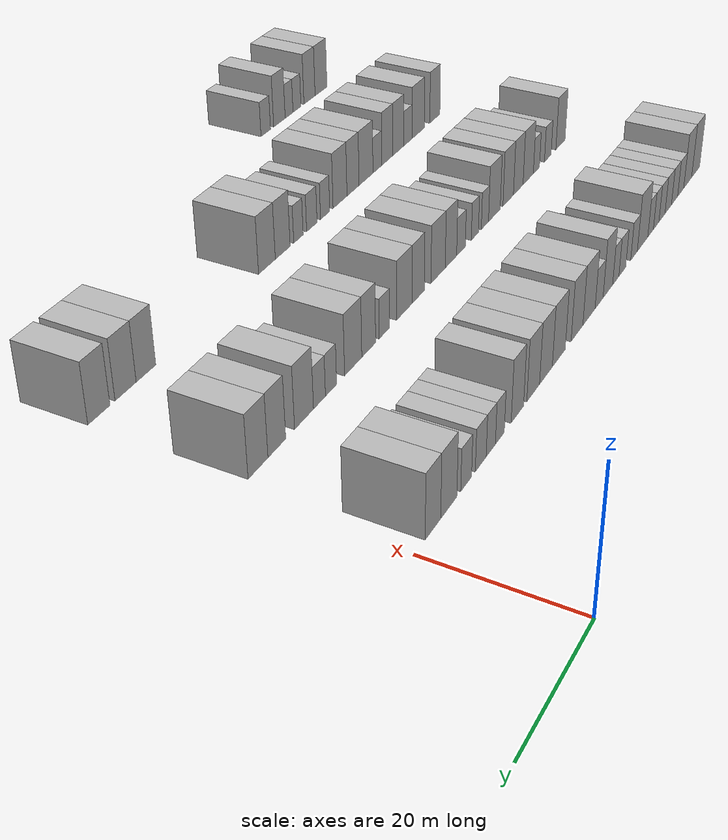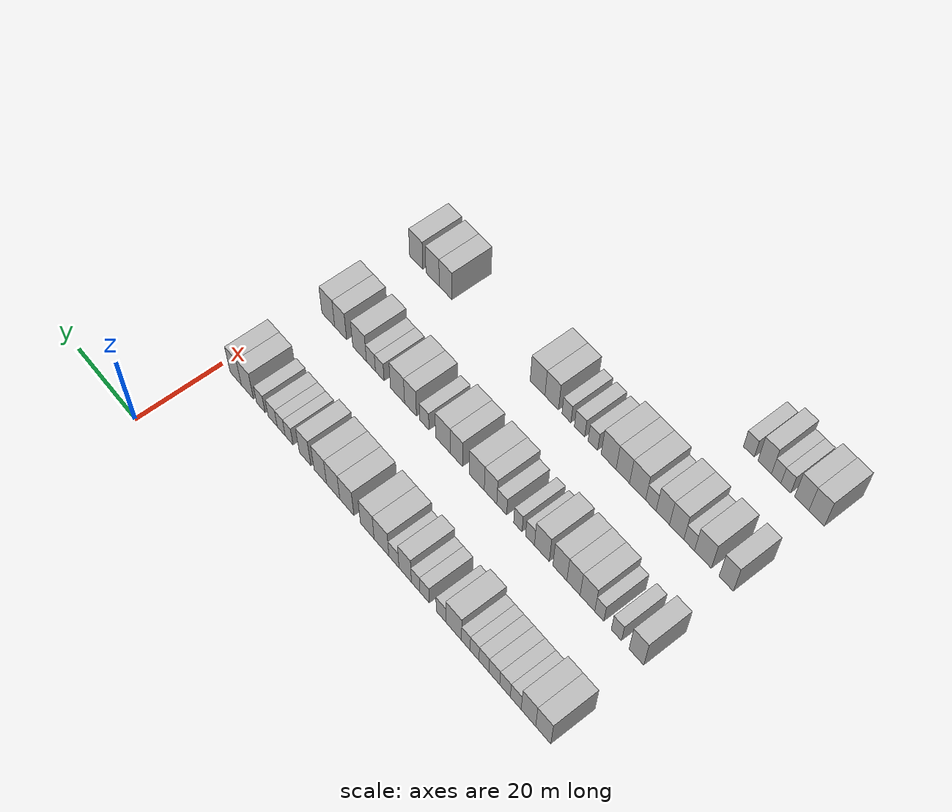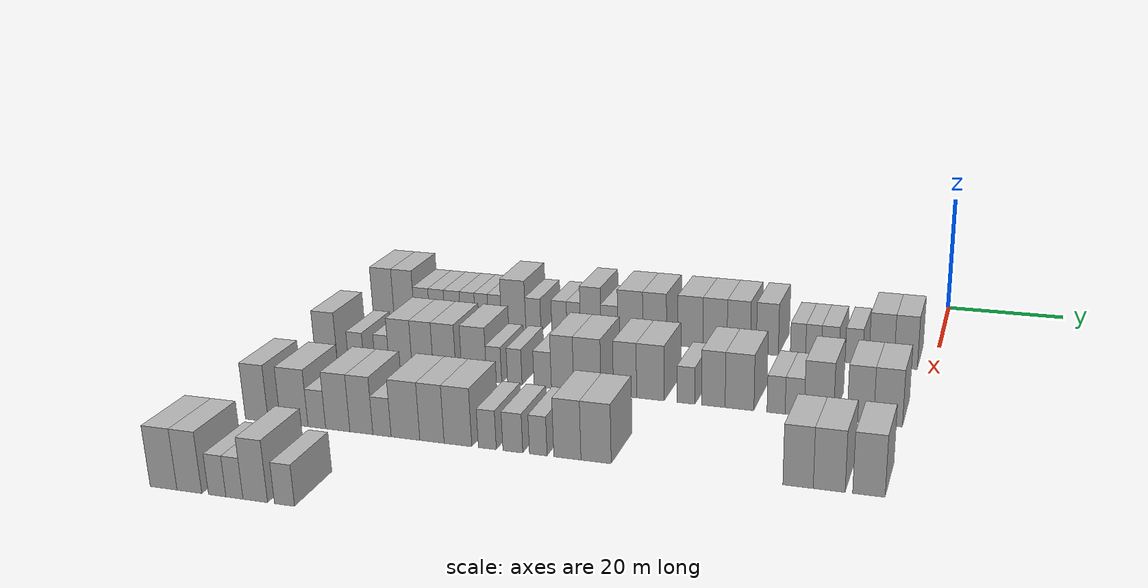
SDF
<sdf version="1.6">
 <world name="default">
  <model name="building_70">
   <static>1</static>
   <pose>25.0000 -96.2771 0 0.000000 0.000000 0.000000</pose>
   <link name="link">
    <pose>0 0 4.50 0 0 0</pose>
    <collision name="collision"><geometry><box><size>10.0000 4.0254 9.0000</size></box></geometry></collision>
    <visual name="visual">
     <cast_shadows>0</cast_shadows>
     <geometry><box><size>10.0000 4.0254 9.0000</size></box></geometry>
     <material>
      <script>
       <uri>model://HANNAS_wall/materials/scripts</uri>
       <uri>model://HANNAS_wall/materials/textures</uri>
       <name>vrc/HANNAS_wall</name>
      </script>
     </material>
    </visual>
   </link>
  </model>
  <model name="building_71">
   <static>1</static>
   <pose>25.0000 -92.3193 0 0.000000 0.000000 0.000000</pose>
   <link name="link">
    <pose>0 0 4.50 0 0 0</pose>
    <collision name="collision"><geometry><box><size>10.0000 3.8903 9.0000</size></box></geometry></collision>
    <visual name="visual">
     <cast_shadows>0</cast_shadows>
     <geometry><box><size>10.0000 3.8903 9.0000</size></box></geometry>
     <material>
      <script>
       <uri>model://HANNAS_wall/materials/scripts</uri>
       <uri>model://HANNAS_wall/materials/textures</uri>
       <name>vrc/HANNAS_wall</name>
      </script>
     </material>
    </visual>
   </link>
  </model>
  <model name="building_72">
   <static>1</static>
   <pose>25.0000 -88.9104 0 0.000000 0.000000 0.000000</pose>
   <link name="link">
    <pose>0 0 3.00 0 0 0</pose>
    <collision name="collision"><geometry><box><size>10.0000 2.9274 6.0000</size></box></geometry></collision>
    <visual name="visual">
     <cast_shadows>0</cast_shadows>
     <geometry><box><size>10.0000 2.9274 6.0000</size></box></geometry>
     <material>
      <script>
       <uri>model://HANNAS_wall/materials/scripts</uri>
       <uri>model://HANNAS_wall/materials/textures</uri>
       <name>vrc/HANNAS_wall</name>
      </script>
     </material>
    </visual>
   </link>
  </model>
  <model name="building_73">
   <static>1</static>
   <pose>25.0000 -86.0013 0 0.000000 0.000000 0.000000</pose>
   <link name="link">
    <pose>0 0 3.00 0 0 0</pose>
    <collision name="collision"><geometry><box><size>10.0000 2.8908 6.0000</size></box></geometry></collision>
    <visual name="visual">
     <cast_shadows>0</cast_shadows>
     <geometry><box><size>10.0000 2.8908 6.0000</size></box></geometry>
     <material>
      <script>
       <uri>model://HANNAS_wall/materials/scripts</uri>
       <uri>model://HANNAS_wall/materials/textures</uri>
       <name>vrc/HANNAS_wall</name>
      </script>
     </material>
    </visual>
   </link>
  </model>
  <model name="building_74">
   <static>1</static>
   <pose>25.0000 -83.0703 0 0.000000 0.000000 0.000000</pose>
   <link name="link">
    <pose>0 0 3.00 0 0 0</pose>
    <collision name="collision"><geometry><box><size>10.0000 2.9712 6.0000</size></box></geometry></collision>
    <visual name="visual">
     <cast_shadows>0</cast_shadows>
     <geometry><box><size>10.0000 2.9712 6.0000</size></box></geometry>
     <material>
      <script>
       <uri>model://HANNAS_wall/materials/scripts</uri>
       <uri>model://HANNAS_wall/materials/textures</uri>
       <name>vrc/HANNAS_wall</name>
      </script>
     </material>
    </visual>
   </link>
  </model>
  <model name="building_75">
   <static>1</static>
   <pose>25.0000 -80.2121 0 0.000000 0.000000 0.000000</pose>
   <link name="link">
    <pose>0 0 3.00 0 0 0</pose>
    <collision name="collision"><geometry><box><size>10.0000 2.7452 6.0000</size></box></geometry></collision>
    <visual name="visual">
     <cast_shadows>0</cast_shadows>
     <geometry><box><size>10.0000 2.7452 6.0000</size></box></geometry>
     <material>
      <script>
       <uri>model://HANNAS_wall/materials/scripts</uri>
       <uri>model://HANNAS_wall/materials/textures</uri>
       <name>vrc/HANNAS_wall</name>
      </script>
     </material>
    </visual>
   </link>
  </model>
  <model name="building_76">
   <static>1</static>
   <pose>25.0000 -77.6186 0 0.000000 0.000000 0.000000</pose>
   <link name="link">
    <pose>0 0 3.00 0 0 0</pose>
    <collision name="collision"><geometry><box><size>10.0000 2.4418 6.0000</size></box></geometry></collision>
    <visual name="visual">
     <cast_shadows>0</cast_shadows>
     <geometry><box><size>10.0000 2.4418 6.0000</size></box></geometry>
     <material>
      <script>
       <uri>model://HANNAS_wall/materials/scripts</uri>
       <uri>model://HANNAS_wall/materials/textures</uri>
       <name>vrc/HANNAS_wall</name>
      </script>
     </material>
    </visual>
   </link>
  </model>
  <model name="building_77">
   <static>1</static>
   <pose>25.0000 -75.1793 0 0.000000 0.000000 0.000000</pose>
   <link name="link">
    <pose>0 0 3.00 0 0 0</pose>
    <collision name="collision"><geometry><box><size>10.0000 2.4368 6.0000</size></box></geometry></collision>
    <visual name="visual">
     <cast_shadows>0</cast_shadows>
     <geometry><box><size>10.0000 2.4368 6.0000</size></box></geometry>
     <material>
      <script>
       <uri>model://HANNAS_wall/materials/scripts</uri>
       <uri>model://HANNAS_wall/materials/textures</uri>
       <name>vrc/HANNAS_wall</name>
      </script>
     </material>
    </visual>
   </link>
  </model>
  <model name="building_78">
   <static>1</static>
   <pose>25.0000 -71.7405 0 0.000000 0.000000 0.000000</pose>
   <link name="link">
    <pose>0 0 4.50 0 0 0</pose>
    <collision name="collision"><geometry><box><size>10.0000 4.4407 9.0000</size></box></geometry></collision>
    <visual name="visual">
     <cast_shadows>0</cast_shadows>
     <geometry><box><size>10.0000 4.4407 9.0000</size></box></geometry>
     <material>
      <script>
       <uri>model://HANNAS_wall/materials/scripts</uri>
       <uri>model://HANNAS_wall/materials/textures</uri>
       <name>vrc/HANNAS_wall</name>
      </script>
     </material>
    </visual>
   </link>
  </model>
  <model name="building_79">
   <static>1</static>
   <pose>25.0000 -68.1407 0 0.000000 0.000000 0.000000</pose>
   <link name="link">
    <pose>0 0 3.00 0 0 0</pose>
    <collision name="collision"><geometry><box><size>10.0000 2.7589 6.0000</size></box></geometry></collision>
    <visual name="visual">
     <cast_shadows>0</cast_shadows>
     <geometry><box><size>10.0000 2.7589 6.0000</size></box></geometry>
     <material>
      <script>
       <uri>model://HANNAS_wall/materials/scripts</uri>
       <uri>model://HANNAS_wall/materials/textures</uri>
       <name>vrc/HANNAS_wall</name>
      </script>
     </material>
    </visual>
   </link>
  </model>
  <model name="building_80">
   <static>1</static>
   <pose>25.0000 -63.3926 0 0.000000 0.000000 0.000000</pose>
   <link name="link">
    <pose>0 0 3.00 0 0 0</pose>
    <collision name="collision"><geometry><box><size>10.0000 2.7373 6.0000</size></box></geometry></collision>
    <visual name="visual">
     <cast_shadows>0</cast_shadows>
     <geometry><box><size>10.0000 2.7373 6.0000</size></box></geometry>
     <material>
      <script>
       <uri>model://HANNAS_wall/materials/scripts</uri>
       <uri>model://HANNAS_wall/materials/textures</uri>
       <name>vrc/HANNAS_wall</name>
      </script>
     </material>
    </visual>
   </link>
  </model>
  <model name="building_81">
   <static>1</static>
   <pose>25.0000 -60.8012 0 0.000000 0.000000 0.000000</pose>
   <link name="link">
    <pose>0 0 3.00 0 0 0</pose>
    <collision name="collision"><geometry><box><size>10.0000 2.4455 6.0000</size></box></geometry></collision>
    <visual name="visual">
     <cast_shadows>0</cast_shadows>
     <geometry><box><size>10.0000 2.4455 6.0000</size></box></geometry>
     <material>
      <script>
       <uri>model://HANNAS_wall/materials/scripts</uri>
       <uri>model://HANNAS_wall/materials/textures</uri>
       <name>vrc/HANNAS_wall</name>
      </script>
     </material>
    </visual>
   </link>
  </model>
  <model name="building_82">
   <static>1</static>
   <pose>25.0000 -57.7466 0 0.000000 0.000000 0.000000</pose>
   <link name="link">
    <pose>0 0 4.50 0 0 0</pose>
    <collision name="collision"><geometry><box><size>10.0000 3.6637 9.0000</size></box></geometry></collision>
    <visual name="visual">
     <cast_shadows>0</cast_shadows>
     <geometry><box><size>10.0000 3.6637 9.0000</size></box></geometry>
     <material>
      <script>
       <uri>model://HANNAS_wall/materials/scripts</uri>
       <uri>model://HANNAS_wall/materials/textures</uri>
       <name>vrc/HANNAS_wall</name>
      </script>
     </material>
    </visual>
   </link>
  </model>
  <model name="building_83">
   <static>1</static>
   <pose>25.0000 -54.4215 0 0.000000 0.000000 0.000000</pose>
   <link name="link">
    <pose>0 0 3.00 0 0 0</pose>
    <collision name="collision"><geometry><box><size>10.0000 2.9864 6.0000</size></box></geometry></collision>
    <visual name="visual">
     <cast_shadows>0</cast_shadows>
     <geometry><box><size>10.0000 2.9864 6.0000</size></box></geometry>
     <material>
      <script>
       <uri>model://HANNAS_wall/materials/scripts</uri>
       <uri>model://HANNAS_wall/materials/textures</uri>
       <name>vrc/HANNAS_wall</name>
      </script>
     </material>
    </visual>
   </link>
  </model>
  <model name="building_84">
   <static>1</static>
   <pose>25.0000 -50.7210 0 0.000000 0.000000 0.000000</pose>
   <link name="link">
    <pose>0 0 4.50 0 0 0</pose>
    <collision name="collision"><geometry><box><size>10.0000 4.4145 9.0000</size></box></geometry></collision>
    <visual name="visual">
     <cast_shadows>0</cast_shadows>
     <geometry><box><size>10.0000 4.4145 9.0000</size></box></geometry>
     <material>
      <script>
       <uri>model://HANNAS_wall/materials/scripts</uri>
       <uri>model://HANNAS_wall/materials/textures</uri>
       <name>vrc/HANNAS_wall</name>
      </script>
     </material>
    </visual>
   </link>
  </model>
  <model name="building_85">
   <static>1</static>
   <pose>25.0000 -46.4467 0 0.000000 0.000000 0.000000</pose>
   <link name="link">
    <pose>0 0 4.50 0 0 0</pose>
    <collision name="collision"><geometry><box><size>10.0000 4.1342 9.0000</size></box></geometry></collision>
    <visual name="visual">
     <cast_shadows>0</cast_shadows>
     <geometry><box><size>10.0000 4.1342 9.0000</size></box></geometry>
     <material>
      <script>
       <uri>model://HANNAS_wall/materials/scripts</uri>
       <uri>model://HANNAS_wall/materials/textures</uri>
       <name>vrc/HANNAS_wall</name>
      </script>
     </material>
    </visual>
   </link>
  </model>
  <model name="building_86">
   <static>1</static>
   <pose>25.0000 -40.2250 0 0.000000 0.000000 0.000000</pose>
   <link name="link">
    <pose>0 0 4.50 0 0 0</pose>
    <collision name="collision"><geometry><box><size>10.0000 4.3090 9.0000</size></box></geometry></collision>
    <visual name="visual">
     <cast_shadows>0</cast_shadows>
     <geometry><box><size>10.0000 4.3090 9.0000</size></box></geometry>
     <material>
      <script>
       <uri>model://HANNAS_wall/materials/scripts</uri>
       <uri>model://HANNAS_wall/materials/textures</uri>
       <name>vrc/HANNAS_wall</name>
      </script>
     </material>
    </visual>
   </link>
  </model>
  <model name="building_87">
   <static>1</static>
   <pose>25.0000 -36.0208 0 0.000000 0.000000 0.000000</pose>
   <link name="link">
    <pose>0 0 4.50 0 0 0</pose>
    <collision name="collision"><geometry><box><size>10.0000 4.0994 9.0000</size></box></geometry></collision>
    <visual name="visual">
     <cast_shadows>0</cast_shadows>
     <geometry><box><size>10.0000 4.0994 9.0000</size></box></geometry>
     <material>
      <script>
       <uri>model://HANNAS_wall/materials/scripts</uri>
       <uri>model://HANNAS_wall/materials/textures</uri>
       <name>vrc/HANNAS_wall</name>
      </script>
     </material>
    </visual>
   </link>
  </model>
  <model name="building_88">
   <static>1</static>
   <pose>25.0000 -31.9930 0 0.000000 0.000000 0.000000</pose>
   <link name="link">
    <pose>0 0 4.50 0 0 0</pose>
    <collision name="collision"><geometry><box><size>10.0000 3.9563 9.0000</size></box></geometry></collision>
    <visual name="visual">
     <cast_shadows>0</cast_shadows>
     <geometry><box><size>10.0000 3.9563 9.0000</size></box></geometry>
     <material>
      <script>
       <uri>model://HANNAS_wall/materials/scripts</uri>
       <uri>model://HANNAS_wall/materials/textures</uri>
       <name>vrc/HANNAS_wall</name>
      </script>
     </material>
    </visual>
   </link>
  </model>
  <model name="building_89">
   <static>1</static>
   <pose>25.0000 -27.1671 0 0.000000 0.000000 0.000000</pose>
   <link name="link">
    <pose>0 0 4.50 0 0 0</pose>
    <collision name="collision"><geometry><box><size>10.0000 3.6957 9.0000</size></box></geometry></collision>
    <visual name="visual">
     <cast_shadows>0</cast_shadows>
     <geometry><box><size>10.0000 3.6957 9.0000</size></box></geometry>
     <material>
      <script>
       <uri>model://HANNAS_wall/materials/scripts</uri>
       <uri>model://HANNAS_wall/materials/textures</uri>
       <name>vrc/HANNAS_wall</name>
      </script>
     </material>
    </visual>
   </link>
  </model>
  <model name="building_90">
   <static>1</static>
   <pose>25.0000 -22.0524 0 0.000000 0.000000 0.000000</pose>
   <link name="link">
    <pose>0 0 3.00 0 0 0</pose>
    <collision name="collision"><geometry><box><size>10.0000 2.5336 6.0000</size></box></geometry></collision>
    <visual name="visual">
     <cast_shadows>0</cast_shadows>
     <geometry><box><size>10.0000 2.5336 6.0000</size></box></geometry>
     <material>
      <script>
       <uri>model://HANNAS_wall/materials/scripts</uri>
       <uri>model://HANNAS_wall/materials/textures</uri>
       <name>vrc/HANNAS_wall</name>
      </script>
     </material>
    </visual>
   </link>
  </model>
  <model name="building_91">
   <static>1</static>
   <pose>25.0000 -19.4993 0 0.000000 0.000000 0.000000</pose>
   <link name="link">
    <pose>0 0 3.00 0 0 0</pose>
    <collision name="collision"><geometry><box><size>10.0000 2.5726 6.0000</size></box></geometry></collision>
    <visual name="visual">
     <cast_shadows>0</cast_shadows>
     <geometry><box><size>10.0000 2.5726 6.0000</size></box></geometry>
     <material>
      <script>
       <uri>model://HANNAS_wall/materials/scripts</uri>
       <uri>model://HANNAS_wall/materials/textures</uri>
       <name>vrc/HANNAS_wall</name>
      </script>
     </material>
    </visual>
   </link>
  </model>
  <model name="building_92">
   <static>1</static>
   <pose>25.0000 -16.7391 0 0.000000 0.000000 0.000000</pose>
   <link name="link">
    <pose>0 0 3.00 0 0 0</pose>
    <collision name="collision"><geometry><box><size>10.0000 2.9478 6.0000</size></box></geometry></collision>
    <visual name="visual">
     <cast_shadows>0</cast_shadows>
     <geometry><box><size>10.0000 2.9478 6.0000</size></box></geometry>
     <material>
      <script>
       <uri>model://HANNAS_wall/materials/scripts</uri>
       <uri>model://HANNAS_wall/materials/textures</uri>
       <name>vrc/HANNAS_wall</name>
      </script>
     </material>
    </visual>
   </link>
  </model>
  <model name="building_93">
   <static>1</static>
   <pose>25.0000 -12.8427 0 0.000000 0.000000 0.000000</pose>
   <link name="link">
    <pose>0 0 3.00 0 0 0</pose>
    <collision name="collision"><geometry><box><size>10.0000 2.8451 6.0000</size></box></geometry></collision>
    <visual name="visual">
     <cast_shadows>0</cast_shadows>
     <geometry><box><size>10.0000 2.8451 6.0000</size></box></geometry>
     <material>
      <script>
       <uri>model://HANNAS_wall/materials/scripts</uri>
       <uri>model://HANNAS_wall/materials/textures</uri>
       <name>vrc/HANNAS_wall</name>
      </script>
     </material>
    </visual>
   </link>
  </model>
  <model name="building_94">
   <static>1</static>
   <pose>25.0000 -8.3882 0 0.000000 0.000000 0.000000</pose>
   <link name="link">
    <pose>0 0 4.50 0 0 0</pose>
    <collision name="collision"><geometry><box><size>10.0000 4.0640 9.0000</size></box></geometry></collision>
    <visual name="visual">
     <cast_shadows>0</cast_shadows>
     <geometry><box><size>10.0000 4.0640 9.0000</size></box></geometry>
     <material>
      <script>
       <uri>model://HANNAS_wall/materials/scripts</uri>
       <uri>model://HANNAS_wall/materials/textures</uri>
       <name>vrc/HANNAS_wall</name>
      </script>
     </material>
    </visual>
   </link>
  </model>
  <model name="building_95">
   <static>1</static>
   <pose>25.0000 -4.4784 0 0.000000 0.000000 0.000000</pose>
   <link name="link">
    <pose>0 0 4.50 0 0 0</pose>
    <collision name="collision"><geometry><box><size>10.0000 3.7555 9.0000</size></box></geometry></collision>
    <visual name="visual">
     <cast_shadows>0</cast_shadows>
     <geometry><box><size>10.0000 3.7555 9.0000</size></box></geometry>
     <material>
      <script>
       <uri>model://HANNAS_wall/materials/scripts</uri>
       <uri>model://HANNAS_wall/materials/textures</uri>
       <name>vrc/HANNAS_wall</name>
      </script>
     </material>
    </visual>
   </link>
  </model>
  <model name="building_262">
   <static>1</static>
   <pose>47.0000 -95.5559 0 0.000000 0.000000 0.000000</pose>
   <link name="link">
    <pose>0 0 4.50 0 0 0</pose>
    <collision name="collision"><geometry><box><size>10.0000 3.8938 9.0000</size></box></geometry></collision>
    <visual name="visual">
     <cast_shadows>0</cast_shadows>
     <geometry><box><size>10.0000 3.8938 9.0000</size></box></geometry>
     <material>
      <script>
       <uri>model://HANNAS_wall/materials/scripts</uri>
       <uri>model://HANNAS_wall/materials/textures</uri>
       <name>vrc/HANNAS_wall</name>
      </script>
     </material>
    </visual>
   </link>
  </model>
  <model name="building_263">
   <static>1</static>
   <pose>47.0000 -90.2427 0 0.000000 0.000000 0.000000</pose>
   <link name="link">
    <pose>0 0 3.00 0 0 0</pose>
    <collision name="collision"><geometry><box><size>10.0000 2.7325 6.0000</size></box></geometry></collision>
    <visual name="visual">
     <cast_shadows>0</cast_shadows>
     <geometry><box><size>10.0000 2.7325 6.0000</size></box></geometry>
     <material>
      <script>
       <uri>model://HANNAS_wall/materials/scripts</uri>
       <uri>model://HANNAS_wall/materials/textures</uri>
       <name>vrc/HANNAS_wall</name>
      </script>
     </material>
    </visual>
   </link>
  </model>
  <model name="building_264">
   <static>1</static>
   <pose>47.0000 -85.6535 0 0.000000 0.000000 0.000000</pose>
   <link name="link">
    <pose>0 0 3.00 0 0 0</pose>
    <collision name="collision"><geometry><box><size>10.0000 2.4460 6.0000</size></box></geometry></collision>
    <visual name="visual">
     <cast_shadows>0</cast_shadows>
     <geometry><box><size>10.0000 2.4460 6.0000</size></box></geometry>
     <material>
      <script>
       <uri>model://HANNAS_wall/materials/scripts</uri>
       <uri>model://HANNAS_wall/materials/textures</uri>
       <name>vrc/HANNAS_wall</name>
      </script>
     </material>
    </visual>
   </link>
  </model>
  <model name="building_265">
   <static>1</static>
   <pose>47.0000 -82.4280 0 0.000000 0.000000 0.000000</pose>
   <link name="link">
    <pose>0 0 4.50 0 0 0</pose>
    <collision name="collision"><geometry><box><size>10.0000 4.0050 9.0000</size></box></geometry></collision>
    <visual name="visual">
     <cast_shadows>0</cast_shadows>
     <geometry><box><size>10.0000 4.0050 9.0000</size></box></geometry>
     <material>
      <script>
       <uri>model://HANNAS_wall/materials/scripts</uri>
       <uri>model://HANNAS_wall/materials/textures</uri>
       <name>vrc/HANNAS_wall</name>
      </script>
     </material>
    </visual>
   </link>
  </model>
  <model name="building_266">
   <static>1</static>
   <pose>47.0000 -78.6016 0 0.000000 0.000000 0.000000</pose>
   <link name="link">
    <pose>0 0 4.50 0 0 0</pose>
    <collision name="collision"><geometry><box><size>10.0000 3.6480 9.0000</size></box></geometry></collision>
    <visual name="visual">
     <cast_shadows>0</cast_shadows>
     <geometry><box><size>10.0000 3.6480 9.0000</size></box></geometry>
     <material>
      <script>
       <uri>model://HANNAS_wall/materials/scripts</uri>
       <uri>model://HANNAS_wall/materials/textures</uri>
       <name>vrc/HANNAS_wall</name>
      </script>
     </material>
    </visual>
   </link>
  </model>
  <model name="building_267">
   <static>1</static>
   <pose>47.0000 -74.8322 0 0.000000 0.000000 0.000000</pose>
   <link name="link">
    <pose>0 0 4.50 0 0 0</pose>
    <collision name="collision"><geometry><box><size>10.0000 3.8908 9.0000</size></box></geometry></collision>
    <visual name="visual">
     <cast_shadows>0</cast_shadows>
     <geometry><box><size>10.0000 3.8908 9.0000</size></box></geometry>
     <material>
      <script>
       <uri>model://HANNAS_wall/materials/scripts</uri>
       <uri>model://HANNAS_wall/materials/textures</uri>
       <name>vrc/HANNAS_wall</name>
      </script>
     </material>
    </visual>
   </link>
  </model>
  <model name="building_268">
   <static>1</static>
   <pose>47.0000 -69.8015 0 0.000000 0.000000 0.000000</pose>
   <link name="link">
    <pose>0 0 4.50 0 0 0</pose>
    <collision name="collision"><geometry><box><size>10.0000 4.1706 9.0000</size></box></geometry></collision>
    <visual name="visual">
     <cast_shadows>0</cast_shadows>
     <geometry><box><size>10.0000 4.1706 9.0000</size></box></geometry>
     <material>
      <script>
       <uri>model://HANNAS_wall/materials/scripts</uri>
       <uri>model://HANNAS_wall/materials/textures</uri>
       <name>vrc/HANNAS_wall</name>
      </script>
     </material>
    </visual>
   </link>
  </model>
  <model name="building_269">
   <static>1</static>
   <pose>47.0000 -66.4611 0 0.000000 0.000000 0.000000</pose>
   <link name="link">
    <pose>0 0 3.00 0 0 0</pose>
    <collision name="collision"><geometry><box><size>10.0000 2.5102 6.0000</size></box></geometry></collision>
    <visual name="visual">
     <cast_shadows>0</cast_shadows>
     <geometry><box><size>10.0000 2.5102 6.0000</size></box></geometry>
     <material>
      <script>
       <uri>model://HANNAS_wall/materials/scripts</uri>
       <uri>model://HANNAS_wall/materials/textures</uri>
       <name>vrc/HANNAS_wall</name>
      </script>
     </material>
    </visual>
   </link>
  </model>
  <model name="building_270">
   <static>1</static>
   <pose>47.0000 -63.0001 0 0.000000 0.000000 0.000000</pose>
   <link name="link">
    <pose>0 0 3.00 0 0 0</pose>
    <collision name="collision"><geometry><box><size>10.0000 2.4117 6.0000</size></box></geometry></collision>
    <visual name="visual">
     <cast_shadows>0</cast_shadows>
     <geometry><box><size>10.0000 2.4117 6.0000</size></box></geometry>
     <material>
      <script>
       <uri>model://HANNAS_wall/materials/scripts</uri>
       <uri>model://HANNAS_wall/materials/textures</uri>
       <name>vrc/HANNAS_wall</name>
      </script>
     </material>
    </visual>
   </link>
  </model>
  <model name="building_271">
   <static>1</static>
   <pose>47.0000 -58.3613 0 0.000000 0.000000 0.000000</pose>
   <link name="link">
    <pose>0 0 3.00 0 0 0</pose>
    <collision name="collision"><geometry><box><size>10.0000 2.8659 6.0000</size></box></geometry></collision>
    <visual name="visual">
     <cast_shadows>0</cast_shadows>
     <geometry><box><size>10.0000 2.8659 6.0000</size></box></geometry>
     <material>
      <script>
       <uri>model://HANNAS_wall/materials/scripts</uri>
       <uri>model://HANNAS_wall/materials/textures</uri>
       <name>vrc/HANNAS_wall</name>
      </script>
     </material>
    </visual>
   </link>
  </model>
  <model name="building_272">
   <static>1</static>
   <pose>47.0000 -55.0954 0 0.000000 0.000000 0.000000</pose>
   <link name="link">
    <pose>0 0 4.50 0 0 0</pose>
    <collision name="collision"><geometry><box><size>10.0000 3.6658 9.0000</size></box></geometry></collision>
    <visual name="visual">
     <cast_shadows>0</cast_shadows>
     <geometry><box><size>10.0000 3.6658 9.0000</size></box></geometry>
     <material>
      <script>
       <uri>model://HANNAS_wall/materials/scripts</uri>
       <uri>model://HANNAS_wall/materials/textures</uri>
       <name>vrc/HANNAS_wall</name>
      </script>
     </material>
    </visual>
   </link>
  </model>
  <model name="building_273">
   <static>1</static>
   <pose>47.0000 -51.0389 0 0.000000 0.000000 0.000000</pose>
   <link name="link">
    <pose>0 0 4.50 0 0 0</pose>
    <collision name="collision"><geometry><box><size>10.0000 4.4472 9.0000</size></box></geometry></collision>
    <visual name="visual">
     <cast_shadows>0</cast_shadows>
     <geometry><box><size>10.0000 4.4472 9.0000</size></box></geometry>
     <material>
      <script>
       <uri>model://HANNAS_wall/materials/scripts</uri>
       <uri>model://HANNAS_wall/materials/textures</uri>
       <name>vrc/HANNAS_wall</name>
      </script>
     </material>
    </visual>
   </link>
  </model>
  <model name="building_274">
   <static>1</static>
   <pose>47.0000 -44.9595 0 0.000000 0.000000 0.000000</pose>
   <link name="link">
    <pose>0 0 4.50 0 0 0</pose>
    <collision name="collision"><geometry><box><size>10.0000 3.7117 9.0000</size></box></geometry></collision>
    <visual name="visual">
     <cast_shadows>0</cast_shadows>
     <geometry><box><size>10.0000 3.7117 9.0000</size></box></geometry>
     <material>
      <script>
       <uri>model://HANNAS_wall/materials/scripts</uri>
       <uri>model://HANNAS_wall/materials/textures</uri>
       <name>vrc/HANNAS_wall</name>
      </script>
     </material>
    </visual>
   </link>
  </model>
  <model name="building_275">
   <static>1</static>
   <pose>47.0000 -40.9039 0 0.000000 0.000000 0.000000</pose>
   <link name="link">
    <pose>0 0 4.50 0 0 0</pose>
    <collision name="collision"><geometry><box><size>10.0000 4.3994 9.0000</size></box></geometry></collision>
    <visual name="visual">
     <cast_shadows>0</cast_shadows>
     <geometry><box><size>10.0000 4.3994 9.0000</size></box></geometry>
     <material>
      <script>
       <uri>model://HANNAS_wall/materials/scripts</uri>
       <uri>model://HANNAS_wall/materials/textures</uri>
       <name>vrc/HANNAS_wall</name>
      </script>
     </material>
    </visual>
   </link>
  </model>
  <model name="building_276">
   <static>1</static>
   <pose>47.0000 -35.2857 0 0.000000 0.000000 0.000000</pose>
   <link name="link">
    <pose>0 0 3.00 0 0 0</pose>
    <collision name="collision"><geometry><box><size>10.0000 2.8371 6.0000</size></box></geometry></collision>
    <visual name="visual">
     <cast_shadows>0</cast_shadows>
     <geometry><box><size>10.0000 2.8371 6.0000</size></box></geometry>
     <material>
      <script>
       <uri>model://HANNAS_wall/materials/scripts</uri>
       <uri>model://HANNAS_wall/materials/textures</uri>
       <name>vrc/HANNAS_wall</name>
      </script>
     </material>
    </visual>
   </link>
  </model>
  <model name="building_277">
   <static>1</static>
   <pose>47.0000 -31.0288 0 0.000000 0.000000 0.000000</pose>
   <link name="link">
    <pose>0 0 4.50 0 0 0</pose>
    <collision name="collision"><geometry><box><size>10.0000 3.6767 9.0000</size></box></geometry></collision>
    <visual name="visual">
     <cast_shadows>0</cast_shadows>
     <geometry><box><size>10.0000 3.6767 9.0000</size></box></geometry>
     <material>
      <script>
       <uri>model://HANNAS_wall/materials/scripts</uri>
       <uri>model://HANNAS_wall/materials/textures</uri>
       <name>vrc/HANNAS_wall</name>
      </script>
     </material>
    </visual>
   </link>
  </model>
  <model name="building_278">
   <static>1</static>
   <pose>47.0000 -26.9733 0 0.000000 0.000000 0.000000</pose>
   <link name="link">
    <pose>0 0 4.50 0 0 0</pose>
    <collision name="collision"><geometry><box><size>10.0000 4.4343 9.0000</size></box></geometry></collision>
    <visual name="visual">
     <cast_shadows>0</cast_shadows>
     <geometry><box><size>10.0000 4.4343 9.0000</size></box></geometry>
     <material>
      <script>
       <uri>model://HANNAS_wall/materials/scripts</uri>
       <uri>model://HANNAS_wall/materials/textures</uri>
       <name>vrc/HANNAS_wall</name>
      </script>
     </material>
    </visual>
   </link>
  </model>
  <model name="building_279">
   <static>1</static>
   <pose>47.0000 -21.3816 0 0.000000 0.000000 0.000000</pose>
   <link name="link">
    <pose>0 0 3.00 0 0 0</pose>
    <collision name="collision"><geometry><box><size>10.0000 2.7491 6.0000</size></box></geometry></collision>
    <visual name="visual">
     <cast_shadows>0</cast_shadows>
     <geometry><box><size>10.0000 2.7491 6.0000</size></box></geometry>
     <material>
      <script>
       <uri>model://HANNAS_wall/materials/scripts</uri>
       <uri>model://HANNAS_wall/materials/textures</uri>
       <name>vrc/HANNAS_wall</name>
      </script>
     </material>
    </visual>
   </link>
  </model>
  <model name="building_280">
   <static>1</static>
   <pose>47.0000 -18.5698 0 0.000000 0.000000 0.000000</pose>
   <link name="link">
    <pose>0 0 3.00 0 0 0</pose>
    <collision name="collision"><geometry><box><size>10.0000 2.8746 6.0000</size></box></geometry></collision>
    <visual name="visual">
     <cast_shadows>0</cast_shadows>
     <geometry><box><size>10.0000 2.8746 6.0000</size></box></geometry>
     <material>
      <script>
       <uri>model://HANNAS_wall/materials/scripts</uri>
       <uri>model://HANNAS_wall/materials/textures</uri>
       <name>vrc/HANNAS_wall</name>
      </script>
     </material>
    </visual>
   </link>
  </model>
  <model name="building_281">
   <static>1</static>
   <pose>47.0000 -14.9284 0 0.000000 0.000000 0.000000</pose>
   <link name="link">
    <pose>0 0 4.50 0 0 0</pose>
    <collision name="collision"><geometry><box><size>10.0000 4.4082 9.0000</size></box></geometry></collision>
    <visual name="visual">
     <cast_shadows>0</cast_shadows>
     <geometry><box><size>10.0000 4.4082 9.0000</size></box></geometry>
     <material>
      <script>
       <uri>model://HANNAS_wall/materials/scripts</uri>
       <uri>model://HANNAS_wall/materials/textures</uri>
       <name>vrc/HANNAS_wall</name>
      </script>
     </material>
    </visual>
   </link>
  </model>
  <model name="building_282">
   <static>1</static>
   <pose>47.0000 -8.7660 0 0.000000 0.000000 0.000000</pose>
   <link name="link">
    <pose>0 0 4.50 0 0 0</pose>
    <collision name="collision"><geometry><box><size>10.0000 3.9165 9.0000</size></box></geometry></collision>
    <visual name="visual">
     <cast_shadows>0</cast_shadows>
     <geometry><box><size>10.0000 3.9165 9.0000</size></box></geometry>
     <material>
      <script>
       <uri>model://HANNAS_wall/materials/scripts</uri>
       <uri>model://HANNAS_wall/materials/textures</uri>
       <name>vrc/HANNAS_wall</name>
      </script>
     </material>
    </visual>
   </link>
  </model>
  <model name="building_283">
   <static>1</static>
   <pose>47.0000 -4.6960 0 0.000000 0.000000 0.000000</pose>
   <link name="link">
    <pose>0 0 4.50 0 0 0</pose>
    <collision name="collision"><geometry><box><size>10.0000 4.2235 9.0000</size></box></geometry></collision>
    <visual name="visual">
     <cast_shadows>0</cast_shadows>
     <geometry><box><size>10.0000 4.2235 9.0000</size></box></geometry>
     <material>
      <script>
       <uri>model://HANNAS_wall/materials/scripts</uri>
       <uri>model://HANNAS_wall/materials/textures</uri>
       <name>vrc/HANNAS_wall</name>
      </script>
     </material>
    </visual>
   </link>
  </model>
  <model name="building_442">
   <static>1</static>
   <pose>69.0000 -95.0983 0 0.000000 0.000000 0.000000</pose>
   <link name="link">
    <pose>0 0 4.50 0 0 0</pose>
    <collision name="collision"><geometry><box><size>10.0000 3.7658 9.0000</size></box></geometry></collision>
    <visual name="visual">
     <cast_shadows>0</cast_shadows>
     <geometry><box><size>10.0000 3.7658 9.0000</size></box></geometry>
     <material>
      <script>
       <uri>model://HANNAS_wall/materials/scripts</uri>
       <uri>model://HANNAS_wall/materials/textures</uri>
       <name>vrc/HANNAS_wall</name>
      </script>
     </material>
    </visual>
   </link>
  </model>
  <model name="building_443">
   <static>1</static>
   <pose>69.0000 -88.9669 0 0.000000 0.000000 0.000000</pose>
   <link name="link">
    <pose>0 0 4.50 0 0 0</pose>
    <collision name="collision"><geometry><box><size>10.0000 4.4970 9.0000</size></box></geometry></collision>
    <visual name="visual">
     <cast_shadows>0</cast_shadows>
     <geometry><box><size>10.0000 4.4970 9.0000</size></box></geometry>
     <material>
      <script>
       <uri>model://HANNAS_wall/materials/scripts</uri>
       <uri>model://HANNAS_wall/materials/textures</uri>
       <name>vrc/HANNAS_wall</name>
      </script>
     </material>
    </visual>
   </link>
  </model>
  <model name="building_444">
   <static>1</static>
   <pose>69.0000 -85.2933 0 0.000000 0.000000 0.000000</pose>
   <link name="link">
    <pose>0 0 3.00 0 0 0</pose>
    <collision name="collision"><geometry><box><size>10.0000 2.8503 6.0000</size></box></geometry></collision>
    <visual name="visual">
     <cast_shadows>0</cast_shadows>
     <geometry><box><size>10.0000 2.8503 6.0000</size></box></geometry>
     <material>
      <script>
       <uri>model://HANNAS_wall/materials/scripts</uri>
       <uri>model://HANNAS_wall/materials/textures</uri>
       <name>vrc/HANNAS_wall</name>
      </script>
     </material>
    </visual>
   </link>
  </model>
  <model name="building_445">
   <static>1</static>
   <pose>69.0000 -81.9220 0 0.000000 0.000000 0.000000</pose>
   <link name="link">
    <pose>0 0 4.50 0 0 0</pose>
    <collision name="collision"><geometry><box><size>10.0000 3.8923 9.0000</size></box></geometry></collision>
    <visual name="visual">
     <cast_shadows>0</cast_shadows>
     <geometry><box><size>10.0000 3.8923 9.0000</size></box></geometry>
     <material>
      <script>
       <uri>model://HANNAS_wall/materials/scripts</uri>
       <uri>model://HANNAS_wall/materials/textures</uri>
       <name>vrc/HANNAS_wall</name>
      </script>
     </material>
    </visual>
   </link>
  </model>
  <model name="building_446">
   <static>1</static>
   <pose>69.0000 -78.1526 0 0.000000 0.000000 0.000000</pose>
   <link name="link">
    <pose>0 0 4.50 0 0 0</pose>
    <collision name="collision"><geometry><box><size>10.0000 3.6465 9.0000</size></box></geometry></collision>
    <visual name="visual">
     <cast_shadows>0</cast_shadows>
     <geometry><box><size>10.0000 3.6465 9.0000</size></box></geometry>
     <material>
      <script>
       <uri>model://HANNAS_wall/materials/scripts</uri>
       <uri>model://HANNAS_wall/materials/textures</uri>
       <name>vrc/HANNAS_wall</name>
      </script>
     </material>
    </visual>
   </link>
  </model>
  <model name="building_447">
   <static>1</static>
   <pose>69.0000 -74.8894 0 0.000000 0.000000 0.000000</pose>
   <link name="link">
    <pose>0 0 3.00 0 0 0</pose>
    <collision name="collision"><geometry><box><size>10.0000 2.8798 6.0000</size></box></geometry></collision>
    <visual name="visual">
     <cast_shadows>0</cast_shadows>
     <geometry><box><size>10.0000 2.8798 6.0000</size></box></geometry>
     <material>
      <script>
       <uri>model://HANNAS_wall/materials/scripts</uri>
       <uri>model://HANNAS_wall/materials/textures</uri>
       <name>vrc/HANNAS_wall</name>
      </script>
     </material>
    </visual>
   </link>
  </model>
  <model name="building_448">
   <static>1</static>
   <pose>69.0000 -71.2091 0 0.000000 0.000000 0.000000</pose>
   <link name="link">
    <pose>0 0 4.50 0 0 0</pose>
    <collision name="collision"><geometry><box><size>10.0000 4.4808 9.0000</size></box></geometry></collision>
    <visual name="visual">
     <cast_shadows>0</cast_shadows>
     <geometry><box><size>10.0000 4.4808 9.0000</size></box></geometry>
     <material>
      <script>
       <uri>model://HANNAS_wall/materials/scripts</uri>
       <uri>model://HANNAS_wall/materials/textures</uri>
       <name>vrc/HANNAS_wall</name>
      </script>
     </material>
    </visual>
   </link>
  </model>
  <model name="building_449">
   <static>1</static>
   <pose>69.0000 -67.0855 0 0.000000 0.000000 0.000000</pose>
   <link name="link">
    <pose>0 0 4.50 0 0 0</pose>
    <collision name="collision"><geometry><box><size>10.0000 3.7665 9.0000</size></box></geometry></collision>
    <visual name="visual">
     <cast_shadows>0</cast_shadows>
     <geometry><box><size>10.0000 3.7665 9.0000</size></box></geometry>
     <material>
      <script>
       <uri>model://HANNAS_wall/materials/scripts</uri>
       <uri>model://HANNAS_wall/materials/textures</uri>
       <name>vrc/HANNAS_wall</name>
      </script>
     </material>
    </visual>
   </link>
  </model>
  <model name="building_450">
   <static>1</static>
   <pose>69.0000 -63.0841 0 0.000000 0.000000 0.000000</pose>
   <link name="link">
    <pose>0 0 4.50 0 0 0</pose>
    <collision name="collision"><geometry><box><size>10.0000 4.2363 9.0000</size></box></geometry></collision>
    <visual name="visual">
     <cast_shadows>0</cast_shadows>
     <geometry><box><size>10.0000 4.2363 9.0000</size></box></geometry>
     <material>
      <script>
       <uri>model://HANNAS_wall/materials/scripts</uri>
       <uri>model://HANNAS_wall/materials/textures</uri>
       <name>vrc/HANNAS_wall</name>
      </script>
     </material>
    </visual>
   </link>
  </model>
  <model name="building_451">
   <static>1</static>
   <pose>69.0000 -58.6081 0 0.000000 0.000000 0.000000</pose>
   <link name="link">
    <pose>0 0 3.00 0 0 0</pose>
    <collision name="collision"><geometry><box><size>10.0000 2.7156 6.0000</size></box></geometry></collision>
    <visual name="visual">
     <cast_shadows>0</cast_shadows>
     <geometry><box><size>10.0000 2.7156 6.0000</size></box></geometry>
     <material>
      <script>
       <uri>model://HANNAS_wall/materials/scripts</uri>
       <uri>model://HANNAS_wall/materials/textures</uri>
       <name>vrc/HANNAS_wall</name>
      </script>
     </material>
    </visual>
   </link>
  </model>
  <model name="building_452">
   <static>1</static>
   <pose>69.0000 -54.7574 0 0.000000 0.000000 0.000000</pose>
   <link name="link">
    <pose>0 0 3.00 0 0 0</pose>
    <collision name="collision"><geometry><box><size>10.0000 2.9859 6.0000</size></box></geometry></collision>
    <visual name="visual">
     <cast_shadows>0</cast_shadows>
     <geometry><box><size>10.0000 2.9859 6.0000</size></box></geometry>
     <material>
      <script>
       <uri>model://HANNAS_wall/materials/scripts</uri>
       <uri>model://HANNAS_wall/materials/textures</uri>
       <name>vrc/HANNAS_wall</name>
      </script>
     </material>
    </visual>
   </link>
  </model>
  <model name="building_453">
   <static>1</static>
   <pose>69.0000 -50.9570 0 0.000000 0.000000 0.000000</pose>
   <link name="link">
    <pose>0 0 3.00 0 0 0</pose>
    <collision name="collision"><geometry><box><size>10.0000 2.6148 6.0000</size></box></geometry></collision>
    <visual name="visual">
     <cast_shadows>0</cast_shadows>
     <geometry><box><size>10.0000 2.6148 6.0000</size></box></geometry>
     <material>
      <script>
       <uri>model://HANNAS_wall/materials/scripts</uri>
       <uri>model://HANNAS_wall/materials/textures</uri>
       <name>vrc/HANNAS_wall</name>
      </script>
     </material>
    </visual>
   </link>
  </model>
  <model name="building_454">
   <static>1</static>
   <pose>69.0000 -46.6507 0 0.000000 0.000000 0.000000</pose>
   <link name="link">
    <pose>0 0 4.50 0 0 0</pose>
    <collision name="collision"><geometry><box><size>10.0000 3.9979 9.0000</size></box></geometry></collision>
    <visual name="visual">
     <cast_shadows>0</cast_shadows>
     <geometry><box><size>10.0000 3.9979 9.0000</size></box></geometry>
     <material>
      <script>
       <uri>model://HANNAS_wall/materials/scripts</uri>
       <uri>model://HANNAS_wall/materials/textures</uri>
       <name>vrc/HANNAS_wall</name>
      </script>
     </material>
    </visual>
   </link>
  </model>
  <model name="building_455">
   <static>1</static>
   <pose>69.0000 -42.4508 0 0.000000 0.000000 0.000000</pose>
   <link name="link">
    <pose>0 0 4.50 0 0 0</pose>
    <collision name="collision"><geometry><box><size>10.0000 4.4019 9.0000</size></box></geometry></collision>
    <visual name="visual">
     <cast_shadows>0</cast_shadows>
     <geometry><box><size>10.0000 4.4019 9.0000</size></box></geometry>
     <material>
      <script>
       <uri>model://HANNAS_wall/materials/scripts</uri>
       <uri>model://HANNAS_wall/materials/textures</uri>
       <name>vrc/HANNAS_wall</name>
      </script>
     </material>
    </visual>
   </link>
  </model>
  <model name="building_456">
   <static>1</static>
   <pose>69.0000 -14.0839 0 0.000000 0.000000 0.000000</pose>
   <link name="link">
    <pose>0 0 4.50 0 0 0</pose>
    <collision name="collision"><geometry><box><size>10.0000 4.1106 9.0000</size></box></geometry></collision>
    <visual name="visual">
     <cast_shadows>0</cast_shadows>
     <geometry><box><size>10.0000 4.1106 9.0000</size></box></geometry>
     <material>
      <script>
       <uri>model://HANNAS_wall/materials/scripts</uri>
       <uri>model://HANNAS_wall/materials/textures</uri>
       <name>vrc/HANNAS_wall</name>
      </script>
     </material>
    </visual>
   </link>
  </model>
  <model name="building_457">
   <static>1</static>
   <pose>69.0000 -9.8873 0 0.000000 0.000000 0.000000</pose>
   <link name="link">
    <pose>0 0 4.50 0 0 0</pose>
    <collision name="collision"><geometry><box><size>10.0000 4.2826 9.0000</size></box></geometry></collision>
    <visual name="visual">
     <cast_shadows>0</cast_shadows>
     <geometry><box><size>10.0000 4.2826 9.0000</size></box></geometry>
     <material>
      <script>
       <uri>model://HANNAS_wall/materials/scripts</uri>
       <uri>model://HANNAS_wall/materials/textures</uri>
       <name>vrc/HANNAS_wall</name>
      </script>
     </material>
    </visual>
   </link>
  </model>
  <model name="building_458">
   <static>1</static>
   <pose>69.0000 -4.5965 0 0.000000 0.000000 0.000000</pose>
   <link name="link">
    <pose>0 0 4.50 0 0 0</pose>
    <collision name="collision"><geometry><box><size>10.0000 4.2989 9.0000</size></box></geometry></collision>
    <visual name="visual">
     <cast_shadows>0</cast_shadows>
     <geometry><box><size>10.0000 4.2989 9.0000</size></box></geometry>
     <material>
      <script>
       <uri>model://HANNAS_wall/materials/scripts</uri>
       <uri>model://HANNAS_wall/materials/textures</uri>
       <name>vrc/HANNAS_wall</name>
      </script>
     </material>
    </visual>
   </link>
  </model>
  <model name="building_628">
   <static>1</static>
   <pose>91.0000 -95.8795 0 0.000000 0.000000 0.000000</pose>
   <link name="link">
    <pose>0 0 4.50 0 0 0</pose>
    <collision name="collision"><geometry><box><size>10.0000 4.0663 9.0000</size></box></geometry></collision>
    <visual name="visual">
     <cast_shadows>0</cast_shadows>
     <geometry><box><size>10.0000 4.0663 9.0000</size></box></geometry>
     <material>
      <script>
       <uri>model://HANNAS_wall/materials/scripts</uri>
       <uri>model://HANNAS_wall/materials/textures</uri>
       <name>vrc/HANNAS_wall</name>
      </script>
     </material>
    </visual>
   </link>
  </model>
  <model name="building_629">
   <static>1</static>
   <pose>91.0000 -91.9789 0 0.000000 0.000000 0.000000</pose>
   <link name="link">
    <pose>0 0 4.50 0 0 0</pose>
    <collision name="collision"><geometry><box><size>10.0000 3.7349 9.0000</size></box></geometry></collision>
    <visual name="visual">
     <cast_shadows>0</cast_shadows>
     <geometry><box><size>10.0000 3.7349 9.0000</size></box></geometry>
     <material>
      <script>
       <uri>model://HANNAS_wall/materials/scripts</uri>
       <uri>model://HANNAS_wall/materials/textures</uri>
       <name>vrc/HANNAS_wall</name>
      </script>
     </material>
    </visual>
   </link>
  </model>
  <model name="building_630">
   <static>1</static>
   <pose>91.0000 -87.8144 0 0.000000 0.000000 0.000000</pose>
   <link name="link">
    <pose>0 0 3.00 0 0 0</pose>
    <collision name="collision"><geometry><box><size>10.0000 2.5943 6.0000</size></box></geometry></collision>
    <visual name="visual">
     <cast_shadows>0</cast_shadows>
     <geometry><box><size>10.0000 2.5943 6.0000</size></box></geometry>
     <material>
      <script>
       <uri>model://HANNAS_wall/materials/scripts</uri>
       <uri>model://HANNAS_wall/materials/textures</uri>
       <name>vrc/HANNAS_wall</name>
      </script>
     </material>
    </visual>
   </link>
  </model>
  <model name="building_631">
   <static>1</static>
   <pose>91.0000 -85.2562 0 0.000000 0.000000 0.000000</pose>
   <link name="link">
    <pose>0 0 3.00 0 0 0</pose>
    <collision name="collision"><geometry><box><size>10.0000 2.5220 6.0000</size></box></geometry></collision>
    <visual name="visual">
     <cast_shadows>0</cast_shadows>
     <geometry><box><size>10.0000 2.5220 6.0000</size></box></geometry>
     <material>
      <script>
       <uri>model://HANNAS_wall/materials/scripts</uri>
       <uri>model://HANNAS_wall/materials/textures</uri>
       <name>vrc/HANNAS_wall</name>
      </script>
     </material>
    </visual>
   </link>
  </model>
  <model name="building_632">
   <static>1</static>
   <pose>91.0000 -82.1863 0 0.000000 0.000000 0.000000</pose>
   <link name="link">
    <pose>0 0 4.50 0 0 0</pose>
    <collision name="collision"><geometry><box><size>10.0000 3.6179 9.0000</size></box></geometry></collision>
    <visual name="visual">
     <cast_shadows>0</cast_shadows>
     <geometry><box><size>10.0000 3.6179 9.0000</size></box></geometry>
     <material>
      <script>
       <uri>model://HANNAS_wall/materials/scripts</uri>
       <uri>model://HANNAS_wall/materials/textures</uri>
       <name>vrc/HANNAS_wall</name>
      </script>
     </material>
    </visual>
   </link>
  </model>
  <model name="building_633">
   <static>1</static>
   <pose>91.0000 -77.9174 0 0.000000 0.000000 0.000000</pose>
   <link name="link">
    <pose>0 0 3.00 0 0 0</pose>
    <collision name="collision"><geometry><box><size>10.0000 2.9199 6.0000</size></box></geometry></collision>
    <visual name="visual">
     <cast_shadows>0</cast_shadows>
     <geometry><box><size>10.0000 2.9199 6.0000</size></box></geometry>
     <material>
      <script>
       <uri>model://HANNAS_wall/materials/scripts</uri>
       <uri>model://HANNAS_wall/materials/textures</uri>
       <name>vrc/HANNAS_wall</name>
      </script>
     </material>
    </visual>
   </link>
  </model>
 </world>
</sdf>
